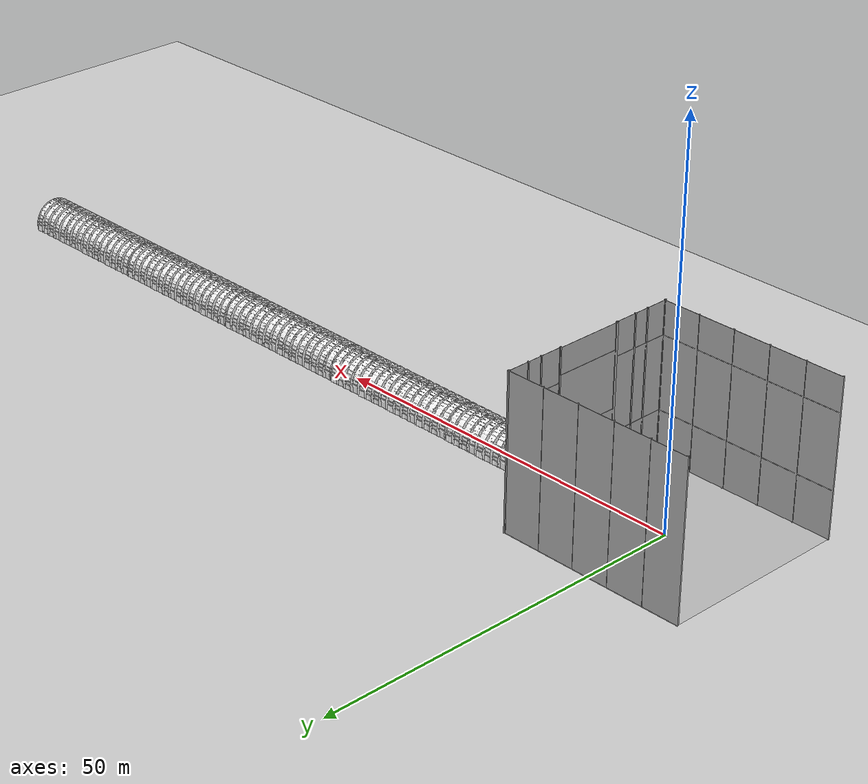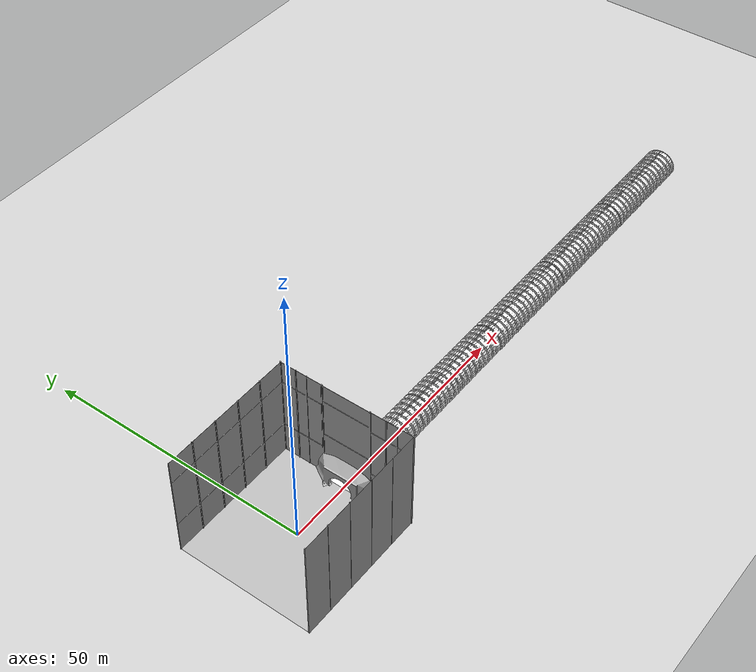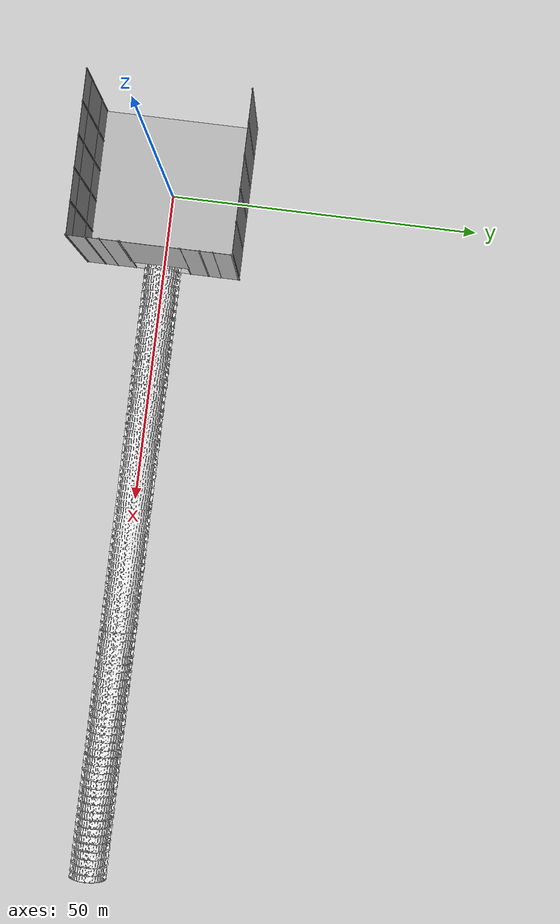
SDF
<sdf version="1.4">
 <world name="default">
  <include><uri>model://ground_plane</uri></include>
  <include><uri>model://sun</uri></include>
  <plugin name="ros_interface_plugin" filename="librotors_gazebo_ros_interface_plugin.so"/>
  <spherical_coordinates>
   <surface_model>EARTH_WGS84</surface_model>
   <latitude_deg>47.3667</latitude_deg>
   <longitude_deg>8.5500</longitude_deg>
   <elevation>500.0</elevation>
   <heading_deg>0</heading_deg>
  </spherical_coordinates>
  <physics type="ode">
   <ode>
    <solver><type>quick</type><iters>1000</iters><sor>1.3</sor></solver>
    <constraints>
     <cfm>0</cfm>
     <erp>0.2</erp>
     <contact_max_correcting_vel>100</contact_max_correcting_vel>
     <contact_surface_layer>0.001</contact_surface_layer>
    </constraints>
   </ode>
   <max_step_size>0.01</max_step_size>
   <real_time_factor>1</real_time_factor>
   <real_time_update_rate>100</real_time_update_rate>
   <gravity>0 0 -9.8</gravity>
  </physics>
  <include>
   <static>true</static>
   <name>staging_area</name>
   <pose>1 0 0 0 0 0</pose>
   <uri>model://subt_tunnel_staging_area</uri>
  </include>
  <include>
   <static>true</static>
   <name>tunnel_straight_1</name>
   <pose>21.44 0 0 0 0 -1.57</pose>
   <uri>model://Tunnel Tile 5</uri>
  </include>
  <include>
   <static>true</static>
   <name>tunnel_straight_2</name>
   <pose>41.54 0 0 0 0 -1.57</pose>
   <uri>model://Tunnel Tile 5</uri>
  </include>
  <include>
   <static>true</static>
   <name>tunnel_straight_3</name>
   <pose>61.64 0 0 0 0 -1.57</pose>
   <uri>model://Tunnel Tile 5</uri>
  </include>
  <include>
   <static>true</static>
   <name>tunnel_straight_4</name>
   <pose>81.74 0 0 0 0 -1.57</pose>
   <uri>model://Tunnel Tile 5</uri>
  </include>
  <include>
   <static>true</static>
   <name>tunnel_straight_5</name>
   <pose>101.84 0 0 0 0 -1.57</pose>
   <uri>model://Tunnel Tile 5</uri>
  </include>
 </world>
</sdf>

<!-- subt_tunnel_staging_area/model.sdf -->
<sdf version="1.6">
    <model name="subt_tunnel_staging_area">
        <static>true</static>
        <link name="link">
            <collision name="collision1">
                <pose>-10 -10 20 0 0 0</pose>
                <geometry>
                    <box>
                        <size>0.1 0.1 0.1</size>
                    </box>
                </geometry>
            </collision>
            <collision name="collision2">
                <pose>10 10 20 0 0 0</pose>
                <geometry>
                    <box>
                        <size>0.1 0.1 0.1</size>
                    </box>
                </geometry>
            </collision>
            <!-- The flat area where the robots starts -->
            <visual name="plane_visual">
                <pose>-1.181716 0 0 0 0 0</pose>
                <geometry>
                    <mesh>
                      <uri>model://subt_tunnel_staging_area/meshes/Asphalt_Plane.DAE</uri>
                    </mesh>
                </geometry>
            </visual>
            <visual name="fence_right1">
                <pose>8.818284 -12.4 0 1.5707 0 0</pose>
                <geometry>
                    <mesh>
                      <uri>model://subt_tunnel_staging_area/meshes/Fence.dae</uri>
                        <scale>1 6.7 1</scale>
                    </mesh>
                </geometry>
            </visual>
            <visual name="fence_right2">
                <pose>3.818284 -12.4 0 1.5707 0 0</pose>
                <geometry>
                    <mesh>
                      <uri>model://subt_tunnel_staging_area/meshes/Fence.dae</uri>
                        <scale>1 6.7 1</scale>
                    </mesh>
                </geometry>
            </visual>
            <visual name="fence_right3">
                <pose>-1.181716 -12.4 0 1.5707 0 0</pose>
                <geometry>
                    <mesh>
                      <uri>model://subt_tunnel_staging_area/meshes/Fence.dae</uri>
                        <scale>1 6.7 1</scale>
                    </mesh>
                </geometry>
            </visual>
            <visual name="fence_right4">
                <pose>-6.181716 -12.4 0 1.5707 0 0</pose>
                <geometry>
                    <mesh>
                      <uri>model://subt_tunnel_staging_area/meshes/Fence.dae</uri>
                        <scale>1 6.7 1</scale>
                    </mesh>
                </geometry>
            </visual>
            <visual name="fence_right5">
                <pose>-11.181716 -12.4 0 1.5707 0 0</pose>
                <geometry>
                    <mesh>
                      <uri>model://subt_tunnel_staging_area/meshes/Fence.dae</uri>
                        <scale>1 6.7 1</scale>
                    </mesh>
                </geometry>
            </visual>

            <visual name="fence_left1">
                <pose>8.818284 12.4 0 1.5707 0 3.1415</pose>
                <geometry>
                    <mesh>
                      <uri>model://subt_tunnel_staging_area/meshes/Fence.dae</uri>
                        <scale>1 6.7 1</scale>
                    </mesh>
                </geometry>
            </visual>
            <visual name="fence_left2">
                <pose>3.818284 12.4 0 1.5707 0 3.1415</pose>
                <geometry>
                    <mesh>
                      <uri>model://subt_tunnel_staging_area/meshes/Fence.dae</uri>
                        <scale>1 6.7 1</scale>
                    </mesh>
                </geometry>
            </visual>
            <visual name="fence_left3">
                <pose>-1.181716 12.4 0 1.5707 0 3.1415</pose>
                <geometry>
                    <mesh>
                      <uri>model://subt_tunnel_staging_area/meshes/Fence.dae</uri>
                        <scale>1 6.7 1</scale>
                    </mesh>
                </geometry>
            </visual>
            <visual name="fence_left4">
                <pose>-6.181716 12.4 0 1.5707 0 3.1415</pose>
                <geometry>
                    <mesh>
                      <uri>model://subt_tunnel_staging_area/meshes/Fence.dae</uri>
                        <scale>1 6.7 1</scale>
                    </mesh>
                </geometry>
            </visual>
            <visual name="fence_left5">
                <pose>-11.181716 12.4 0 1.5707 0 3.1415</pose>
                <geometry>
                    <mesh>
                      <uri>model://subt_tunnel_staging_area/meshes/Fence.dae</uri>
                        <scale>1 6.7 1</scale>
                    </mesh>
                </geometry>
            </visual>

            <visual name="fence_front_left1">
                <pose>11.3181716 10 0 1.5707 0 1.5707</pose>
                <geometry>
                    <mesh>
                      <uri>model://subt_tunnel_staging_area/meshes/Fence.dae</uri>
                        <scale>1 6.7 1</scale>
                    </mesh>
                </geometry>
            </visual>
            <visual name="fence_front_left2">
                <pose>11.3181716 7 0 1.5707 0 1.5707</pose>
                <geometry>
                    <mesh>
                      <uri>model://subt_tunnel_staging_area/meshes/Fence.dae</uri>
                        <scale>1 6.7 1</scale>
                    </mesh>
                </geometry>
            </visual>
            <visual name="fence_front_right1">
                <pose>11.3181716 -10 0 1.5707 0 1.5707</pose>
                <geometry>
                    <mesh>
                      <uri>model://subt_tunnel_staging_area/meshes/Fence.dae</uri>
                        <scale>1 6.7 1</scale>
                    </mesh>
                </geometry>
            </visual>
            <visual name="fence_front_right2">
                <pose>11.3181716 -7 0 1.5707 0 1.5707</pose>
                <geometry>
                    <mesh>
                      <uri>model://subt_tunnel_staging_area/meshes/Fence.dae</uri>
                        <scale>1 6.7 1</scale>
                    </mesh>
                </geometry>
            </visual>
            <visual name="fence_front_top">
                <pose>11.3181716 0 4.5 1.5707 0 1.5707</pose>
                <geometry>
                    <mesh>
                      <uri>model://subt_tunnel_staging_area/meshes/Fence.dae</uri>
                        <scale>1.8 5.17 1</scale>
                    </mesh>
                </geometry>
            </visual>

            <collision name="ceiling_collision">
                <pose>-1.181716 0 20.5 0 0 0</pose>
                <geometry>
                    <box>
                        <size>25 25 1</size>
                    </box>
                </geometry>
            </collision>
            <collision name="right_collision">
                <pose>-1.181716 -13 10.5 0 0 0</pose>
                <geometry>
                    <box>
                        <size>25 1 21</size>
                    </box>
                </geometry>
            </collision>
            <collision name="left_collision">
                <pose>-1.181716 13 10.5 0 0 0</pose>
                <geometry>
                    <box>
                        <size>25 1 21</size>
                    </box>
                </geometry>
            </collision>
            <collision name="rear_collision">
                <pose>-13.6181716 0 10.5 0 0 0</pose>
                <geometry>
                    <box>
                        <size>1 25 21</size>
                    </box>
                </geometry>
            </collision>
            <collision name="front_left_collision">
                <pose>11.3181716 8.75 10.5 0 0 0</pose>
                <geometry>
                    <box>
                        <size>1 9.5 21</size>
                    </box>
                </geometry>
            </collision>
            <collision name="front_right_collision">
                <pose>11.3181716 -8.75 10.5 0 0 0</pose>
                <geometry>
                    <box>
                        <size>1 9.5 21</size>
                    </box>
                </geometry>
            </collision>
            <collision name="front_top_collision">
                <pose>11.3181716 0 12.5 0 0 0</pose>
                <geometry>
                    <box>
                        <size>1 8 15</size>
                    </box>
                </geometry>
            </collision>

            <collision name="plane_collision">
                <pose>-1.181716 0 -0.502 0 0 0</pose>
                <geometry>
                    <box>
                        <size>25 25 1</size>
                    </box>
                </geometry>
            </collision>
            <!-- Entry to the tunnel -->
            <collision name="collision">
                <pose>10 0 -0.001 0 0 -1.5707963267948966</pose>
                <geometry>
                    <mesh>
                        <scale>0.93 0.93 0.93</scale>
                        <uri>model://subt_tunnel_staging_area/meshes/Entrance.dae</uri>
                    </mesh>
                </geometry>
            </collision>
            <visual name="visual">
                <pose>10 0 -0.001 0 0 -1.5707963267948966</pose>
                <geometry>
                    <mesh>
                        <scale>0.93 0.93 0.93</scale>
                        <uri>model://subt_tunnel_staging_area/meshes/Entrance.dae</uri>
                    </mesh>
                </geometry>
            </visual>
        </link>
    </model>
</sdf>

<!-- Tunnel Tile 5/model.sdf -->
<sdf version="1.6">
  <model name="Tunnel Tile 5">
    <static>true</static>
    <link name="link">
      <collision name="collision">
        <geometry>
          <mesh>
            <uri>model://Tunnel Tile 5/meshes/Tunnel Tile 5.dae</uri>
          </mesh>
        </geometry>
      </collision>
      <collision name="collision_ground">
        <geometry>
          <box>
            <size>5 20 0.001</size>
          </box>
        </geometry>
      </collision>
      <visual name="visual_chainlink">
        <geometry>
          <mesh>
            <uri>model://Tunnel Tile 5/meshes/Tunnel Tile 5.dae</uri>
            <submesh>
              <name>Chainlink</name>
              <center>false</center>
            </submesh>
            <scale>1.005 1.005 1.0</scale>
          </mesh>
        </geometry>
        <material>
          <diffuse>1.0 1.0 1.0</diffuse>
          <specular>1.0 1.0 1.0</specular>
          <script>
              <uri>model://Tunnel Tile 5/materials/scripts</uri>
              <uri>model://Tunnel Tile 5/materials/textures</uri>
              <name>TunnelTile/Chainlink_Diffuse</name>
          </script>
        </material>
      </visual>
      <visual name="visual_ground">
        <geometry>
          <mesh>
            <uri>model://Tunnel Tile 5/meshes/Tunnel Tile 5.dae</uri>
            <submesh>
              <name>Ground</name>
              <center>false</center>
            </submesh>
            <scale>1.005 1.005 1.0</scale>
          </mesh>
        </geometry>
        <material>
          <diffuse>1.0 1.0 1.0</diffuse>
          <specular>1.0 1.0 1.0</specular>
          <script>
              <uri>model://Tunnel Tile 5/materials/scripts</uri>
              <uri>model://Tunnel Tile 5/materials/textures</uri>
              <name>TunnelTile/Ground_Diffuse</name>
          </script>
        </material>
      </visual>
      <visual name="visual_wood">
        <geometry>
          <mesh>
            <uri>model://Tunnel Tile 5/meshes/Tunnel Tile 5.dae</uri>
            <submesh>
              <name>Wood</name>
              <center>false</center>
            </submesh>
            <scale>1.005 1.005 1.0</scale>
          </mesh>
        </geometry>
        <material>
          <diffuse>1.0 1.0 1.0</diffuse>
          <specular>1.0 1.0 1.0</specular>
          <script>
              <uri>model://Tunnel Tile 5/materials/scripts</uri>
              <uri>model://Tunnel Tile 5/materials/textures</uri>
              <name>TunnelTile/Wood_Diffuse</name>
          </script>
        </material>
      </visual>
      <visual name="visual_walls">
        <geometry>
          <mesh>
            <uri>model://Tunnel Tile 5/meshes/Tunnel Tile 5.dae</uri>
            <submesh>
              <name>Walls</name>
              <center>false</center>
            </submesh>
            <scale>1.005 1.005 1.0</scale>
          </mesh>
        </geometry>
        <material>
          <diffuse>1.0 1.0 1.0</diffuse>
          <specular>1.0 1.0 1.0</specular>
          <script>
              <uri>model://Tunnel Tile 5/materials/scripts</uri>
              <uri>model://Tunnel Tile 5/materials/textures</uri>
              <name>TunnelTile/Walls_Diffuse</name>
          </script>
        </material>
      </visual>
      <visual name="visual_lights">
        <geometry>
          <mesh>
            <uri>model://Tunnel Tile 5/meshes/Tunnel Tile 5.dae</uri>
            <submesh>
              <name>Lights</name>
              <center>false</center>
            </submesh>
            <scale>1.005 1.005 1.0</scale>
          </mesh>
        </geometry>
        <material>
          <diffuse>1.0 1.0 1.0</diffuse>
          <specular>1.0 1.0 1.0</specular>
          <script>
              <uri>model://Tunnel Tile 5/materials/scripts</uri>
              <uri>model://Tunnel Tile 5/materials/textures</uri>
              <name>TunnelTile/Light_Diffuse</name>
          </script>
        </material>
      </visual>
    </link>
  </model>
</sdf>
